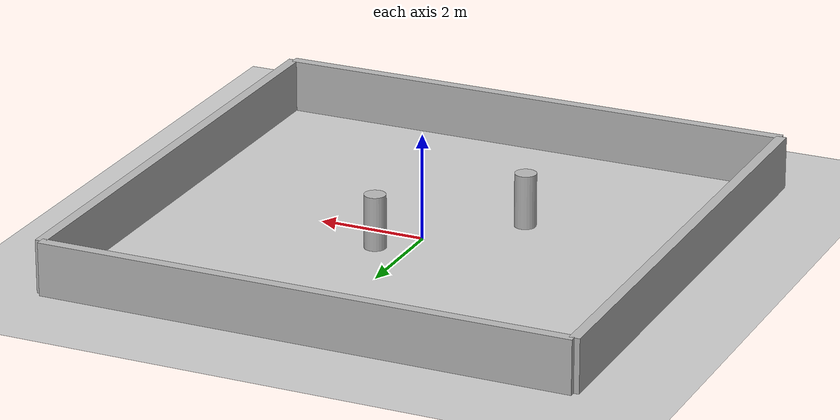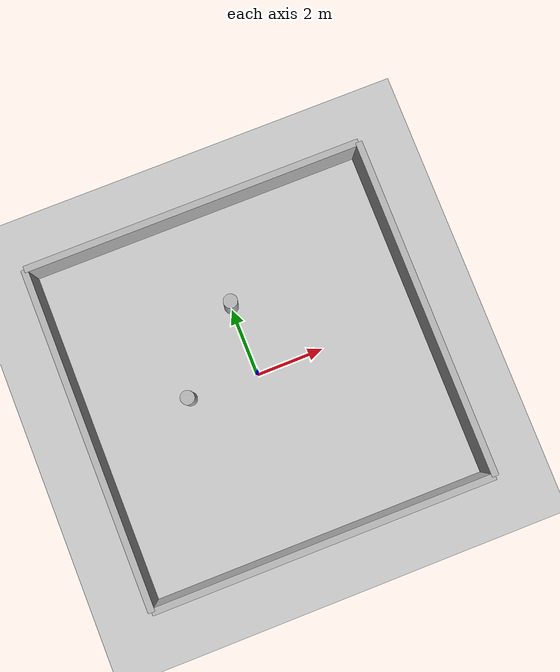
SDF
<?xml version="1.0" ?>
<sdf version="1.6">

<world name="default">

  <!-- Environment -->

  <include>
    <uri>model://ground_plane</uri>
  </include>

  <include>
    <uri>model://sun</uri>
  </include>

  <!-- Walls -->

  <!-- North -->
  <model name="north_wall">
    <static>true</static>
    <pose>0 5 0.5 0 0 0</pose>

    <link name="link">

      <collision name="collision">
        <geometry>
          <box>
            <size>10 0.2 1</size>
          </box>
        </geometry>
      </collision>

      <visual name="visual">
        <geometry>
          <box>
            <size>10 0.2 1</size>
          </box>
        </geometry>
      </visual>

    </link>

  </model>

  <!-- South -->
  <model name="south_wall">

    <static>true</static>

    <pose>0 -5 0.5 0 0 0</pose>

    <link name="link">

      <collision name="collision">
        <geometry>
          <box>
            <size>10 0.2 1</size>
          </box>
        </geometry>
      </collision>

      <visual name="visual">
        <geometry>
          <box>
            <size>10 0.2 1</size>
          </box>
        </geometry>
      </visual>

    </link>

  </model>

  <!-- East -->
  <model name="east_wall">

    <static>true</static>

    <pose>5 0 0.5 0 0 0</pose>

    <link name="link">

      <collision name="collision">
        <geometry>
          <box>
            <size>0.2 10 1</size>
          </box>
        </geometry>
      </collision>

      <visual name="visual">
        <geometry>
          <box>
            <size>0.2 10 1</size>
          </box>
        </geometry>
      </visual>

    </link>

  </model>

  <!-- West -->
  <model name="west_wall">

    <static>true</static>

    <pose>-5 0 0.5 0 0 0</pose>

    <link name="link">

      <collision name="collision">
        <geometry>
          <box>
            <size>0.2 10 1</size>
          </box>
        </geometry>
      </collision>

      <visual name="visual">
        <geometry>
          <box>
            <size>0.2 10 1</size>
          </box>
        </geometry>
      </visual>

    </link>

  </model>

  <!-- Dynamic obstacle 1 -->

  <model name="obstacle1">

    <static>false</static>

    <pose>-2 0 1.1 0 0 0</pose>

    <link name="body">

      <kinematic>true</kinematic>

        <inertial>
            <mass>1.0</mass>
            <inertia>
                <ixx>0.1058</ixx>
                <iyy>0.1058</iyy>
                <izz>0.0450</izz>
                <ixy>0.0</ixy>
                <ixz>0.0</ixz>
                <iyz>0.0</iyz>
            </inertia>
        </inertial>

      <collision name="collision">

        <geometry>
          <cylinder>

            <radius>0.20</radius>

            <length>1.0</length>

          </cylinder>
        </geometry>

      </collision>

      <visual name="visual">

        <geometry>

          <cylinder>

            <radius>0.20</radius>

            <length>1.0</length>

          </cylinder>

        </geometry>

      </visual>

    </link>

  </model>

  <!-- Dynamic obstacle 2 -->

  <model name="obstacle2">

    <static>false</static>

    <pose>0 2 1.1 0 0 0</pose>

    <link name="body">

      <kinematic>true</kinematic>

        <inertial>
            <mass>1.0</mass>
            <inertia>
                <ixx>0.1058</ixx>
                <iyy>0.1058</iyy>
                <izz>0.0450</izz>
                <ixy>0.0</ixy>
                <ixz>0.0</ixz>
                <iyz>0.0</iyz>
            </inertia>
        </inertial>

      <collision name="collision">

        <geometry>

          <cylinder>

            <radius>0.20</radius>

            <length>1.0</length>

          </cylinder>

        </geometry>

      </collision>

      <visual name="visual">

        <geometry>

          <cylinder>

            <radius>0.20</radius>

            <length>1.0</length>

          </cylinder>

        </geometry>

      </visual>

    </link>

  </model>

  <!-- Dynamic obstacle 3 -->

  <model name="obstacle3">

    <static>false</static>

    <pose>0 2 1.1 0 0 0</pose>

    <link name="body">

      <kinematic>true</kinematic>

        <inertial>
            <mass>1.0</mass>
            <inertia>
                <ixx>0.1058</ixx>
                <iyy>0.1058</iyy>
                <izz>0.0450</izz>
                <ixy>0.0</ixy>
                <ixz>0.0</ixz>
                <iyz>0.0</iyz>
            </inertia>
        </inertial>

      <collision name="collision">

        <geometry>

          <cylinder>

            <radius>0.20</radius>

            <length>1.0</length>

          </cylinder>

        </geometry>

      </collision>

      <visual name="visual">

        <geometry>

          <cylinder>

            <radius>0.20</radius>

            <length>1.0</length>

          </cylinder>

        </geometry>

      </visual>

    </link>

  </model>

  <!-- Dynamic obstacle 4 -->

  <model name="obstacle4">

    <static>false</static>

    <pose>0 2 1.1 0 0 0</pose>

    <link name="body">

      <kinematic>true</kinematic>

        <inertial>
            <mass>1.0</mass>
            <inertia>
                <ixx>0.1058</ixx>
                <iyy>0.1058</iyy>
                <izz>0.0450</izz>
                <ixy>0.0</ixy>
                <ixz>0.0</ixz>
                <iyz>0.0</iyz>
            </inertia>
        </inertial>

      <collision name="collision">

        <geometry>

          <cylinder>

            <radius>0.20</radius>

            <length>1.0</length>

          </cylinder>

        </geometry>

      </collision>

      <visual name="visual">

        <geometry>

          <cylinder>

            <radius>0.20</radius>

            <length>1.0</length>

          </cylinder>

        </geometry>

      </visual>

    </link>

  </model>

  <!-- Dynamic obstacle 5 -->

  <model name="obstacle5">

    <static>false</static>

    <pose>0 2 1.1 0 0 0</pose>

    <link name="body">

      <kinematic>true</kinematic>

        <inertial>
            <mass>1.0</mass>
            <inertia>
                <ixx>0.1058</ixx>
                <iyy>0.1058</iyy>
                <izz>0.0450</izz>
                <ixy>0.0</ixy>
                <ixz>0.0</ixz>
                <iyz>0.0</iyz>
            </inertia>
        </inertial>

      <collision name="collision">

        <geometry>

          <cylinder>

            <radius>0.20</radius>

            <length>1.0</length>

          </cylinder>

        </geometry>

      </collision>

      <visual name="visual">

        <geometry>

          <cylinder>

            <radius>0.20</radius>

            <length>1.0</length>

          </cylinder>

        </geometry>

      </visual>

    </link>

  </model>

  <!-- Dynamic obstacle 6 -->

  <model name="obstacle6">

    <static>false</static>

    <pose>0 2 1.1 0 0 0</pose>

    <link name="body">

      <kinematic>true</kinematic>

        <inertial>
            <mass>1.0</mass>
            <inertia>
                <ixx>0.1058</ixx>
                <iyy>0.1058</iyy>
                <izz>0.0450</izz>
                <ixy>0.0</ixy>
                <ixz>0.0</ixz>
                <iyz>0.0</iyz>
            </inertia>
        </inertial>

      <collision name="collision">

        <geometry>

          <cylinder>

            <radius>0.20</radius>

            <length>1.0</length>

          </cylinder>

        </geometry>

      </collision>

      <visual name="visual">

        <geometry>

          <cylinder>

            <radius>0.20</radius>

            <length>1.0</length>

          </cylinder>

        </geometry>

      </visual>

    </link>

  </model>

  <!-- Dynamic obstacle 7 -->

  <!-- Dynamic obstacle 8 -->

  <!-- Dynamic obstacle 9 -->

  <!-- Dynamic obstacle 10 -->

  <!-- Motion plugin -->

  <plugin

      name="moving_obstacles"

      filename="libmoving_obstacles.so"/>

</world>

</sdf>
